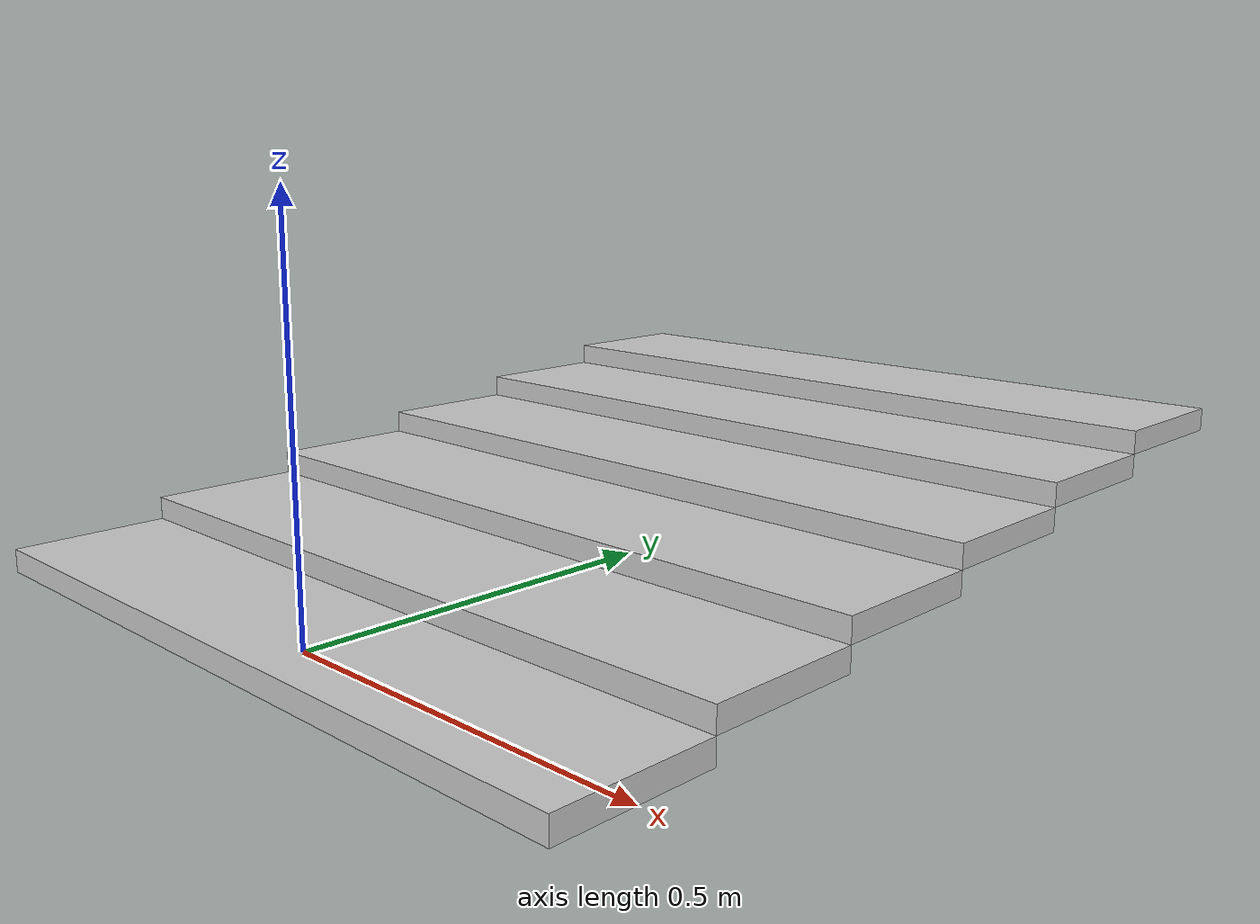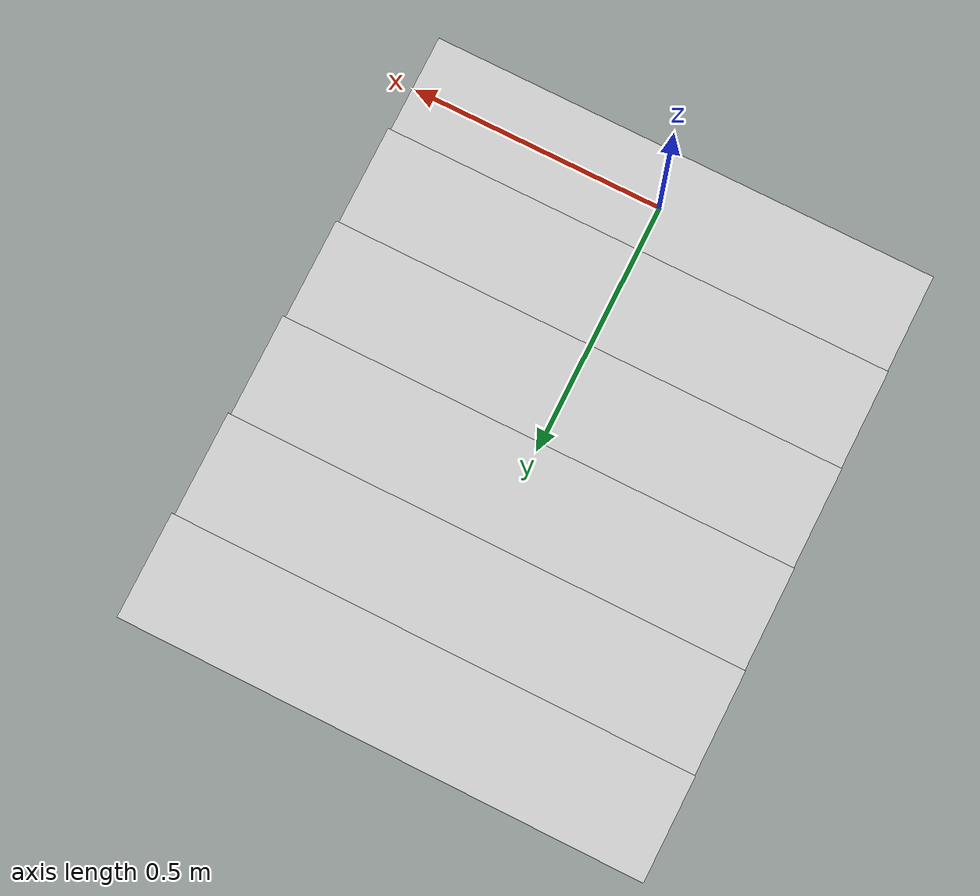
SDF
<?xml version="1.0"?>
<sdf version="1.7">
  <model name="stairs">
    <static>true</static>

    <link name="step_0">
      <pose>0 0.0 0.015 0 0 0</pose>
      <collision name="collision">
        <geometry>
          <box><size>1.0 0.2 0.03</size></box>
        </geometry>
        <surface>
          <friction>
            <ode>
              <mu>1.0</mu>
              <mu2>0.8</mu2>
            </ode>
          </friction>
        </surface>
      </collision>
      <visual name="visual">
        <geometry>
          <box><size>1.0 0.2 0.03</size></box>
        </geometry>
        <material>
          <ambient>0.7 0.7 0.7 1</ambient>
          <diffuse>0.8 0.8 0.8 1</diffuse>
        </material>
      </visual>
    </link>

    <link name="step_1">
      <pose>0 0.2 0.045 0 0 0</pose>
      <collision name="collision">
        <geometry>
          <box><size>1.0 0.2 0.03</size></box>
        </geometry>
        <surface>
          <friction>
            <ode><mu>1.0</mu><mu2>0.8</mu2></ode>
          </friction>
        </surface>
      </collision>
      <visual name="visual">
        <geometry>
          <box><size>1.0 0.2 0.03</size></box>
        </geometry>
        <material>
          <ambient>0.7 0.7 0.7 1</ambient>
          <diffuse>0.8 0.8 0.8 1</diffuse>
        </material>
      </visual>
    </link>

    <link name="step_2">
      <pose>0 0.4 0.075 0 0 0</pose>
      <collision name="collision">
        <geometry>
          <box><size>1.0 0.2 0.03</size></box>
        </geometry>
        <surface>
          <friction>
            <ode><mu>1.0</mu><mu2>0.8</mu2></ode>
          </friction>
        </surface>
      </collision>
      <visual name="visual">
        <geometry>
          <box><size>1.0 0.2 0.03</size></box>
        </geometry>
        <material>
          <ambient>0.7 0.7 0.7 1</ambient>
          <diffuse>0.8 0.8 0.8 1</diffuse>
        </material>
      </visual>
    </link>

    <link name="step_3">
      <pose>0 0.6 0.105 0 0 0</pose>
      <collision name="collision">
        <geometry>
          <box><size>1.0 0.2 0.03</size></box>
        </geometry>
        <surface>
          <friction>
            <ode><mu>1.0</mu><mu2>0.8</mu2></ode>
          </friction>
        </surface>
      </collision>
      <visual name="visual">
        <geometry>
          <box><size>1.0 0.2 0.03</size></box>
        </geometry>
        <material>
          <ambient>0.7 0.7 0.7 1</ambient>
          <diffuse>0.8 0.8 0.8 1</diffuse>
        </material>
      </visual>
    </link>

    <link name="step_4">
      <pose>0 0.8 0.135 0 0 0</pose>
      <collision name="collision">
        <geometry>
          <box><size>1.0 0.2 0.03</size></box>
        </geometry>
        <surface>
          <friction>
            <ode><mu>1.0</mu><mu2>0.8</mu2></ode>
          </friction>
        </surface>
      </collision>
      <visual name="visual">
        <geometry>
          <box><size>1.0 0.2 0.03</size></box>
        </geometry>
        <material>
          <ambient>0.7 0.7 0.7 1</ambient>
          <diffuse>0.8 0.8 0.8 1</diffuse>
        </material>
      </visual>
    </link>

    <link name="step_5">
      <pose>0 1.0 0.165 0 0 0</pose>
      <collision name="collision">
        <geometry>
          <box><size>1.0 0.2 0.03</size></box>
        </geometry>
        <surface>
          <friction>
            <ode><mu>1.0</mu><mu2>0.8</mu2></ode>
          </friction>
        </surface>
      </collision>
      <visual name="visual">
        <geometry>
          <box><size>1.0 0.2 0.03</size></box>
        </geometry>
        <material>
          <ambient>0.7 0.7 0.7 1</ambient>
          <diffuse>0.8 0.8 0.8 1</diffuse>
        </material>
      </visual>
    </link>

  </model>
</sdf>
